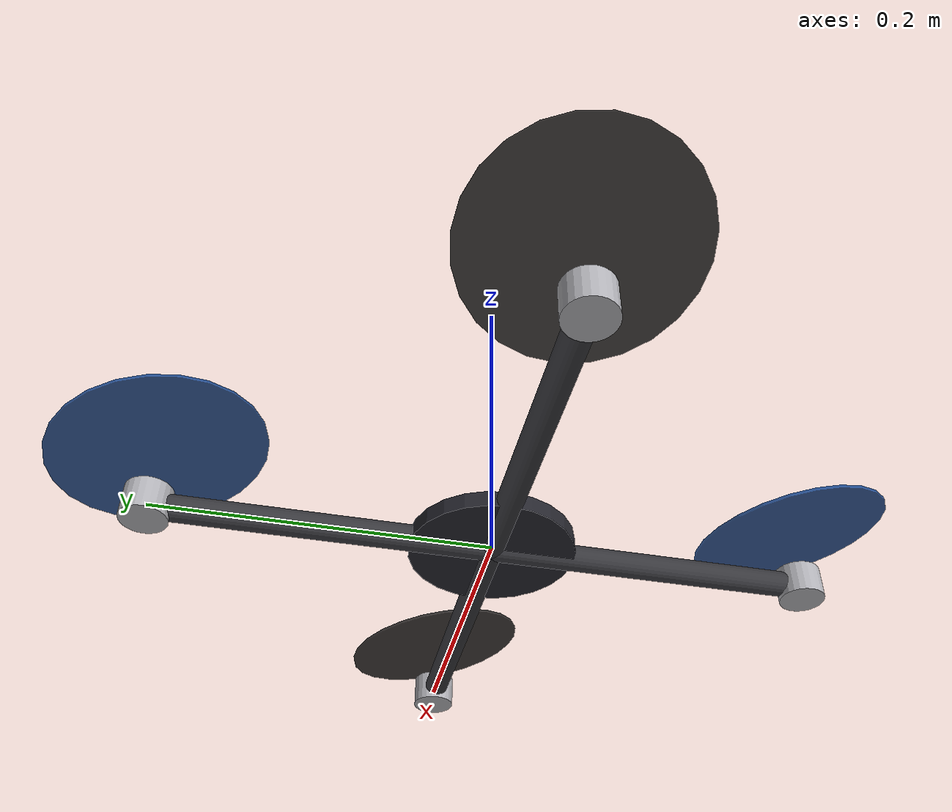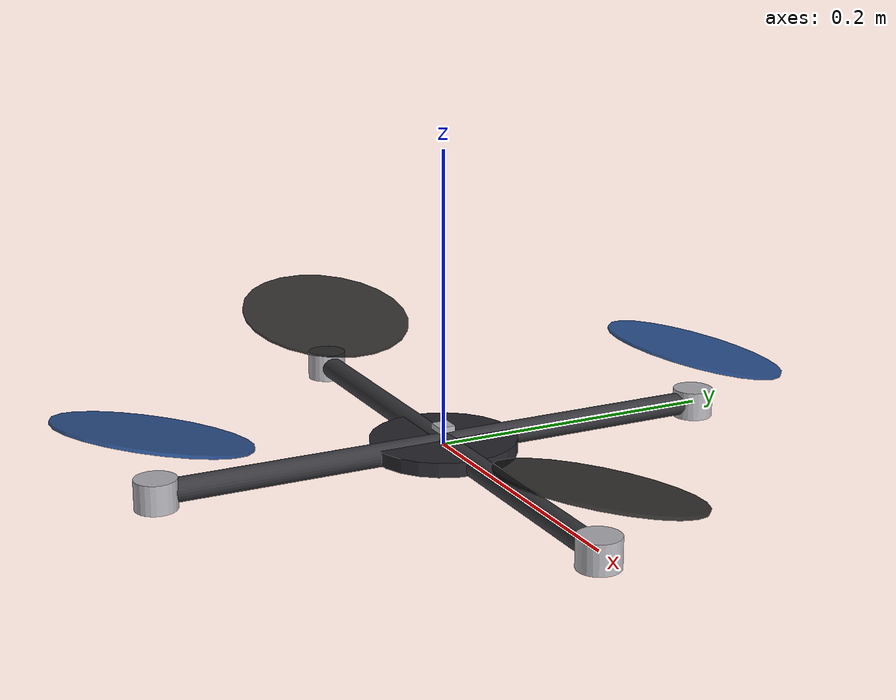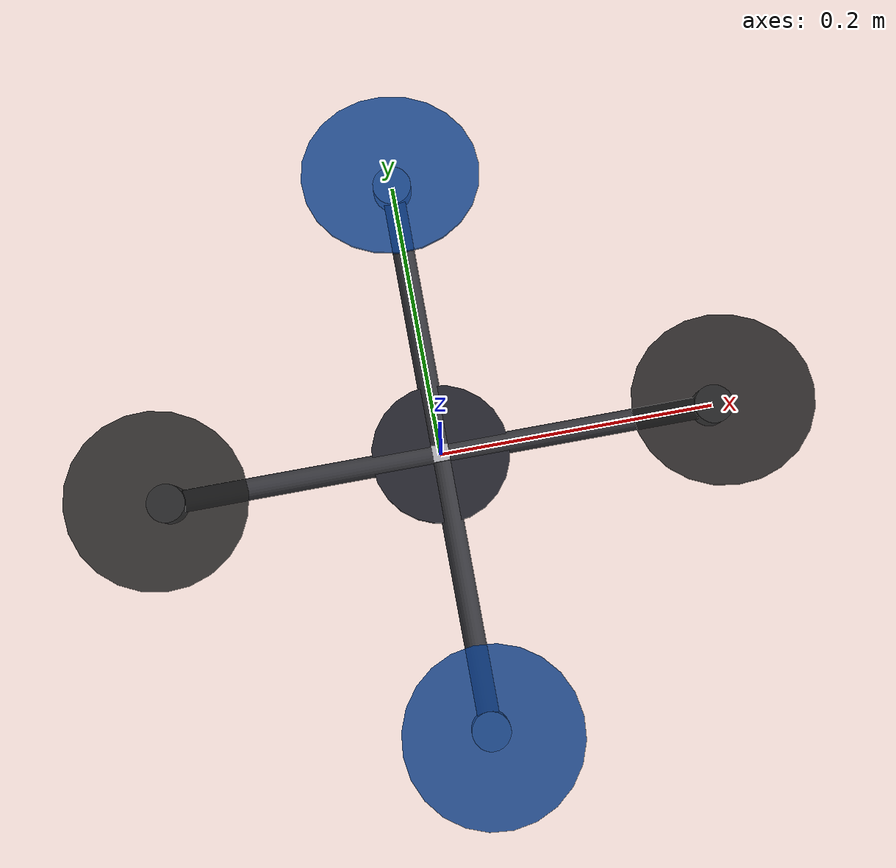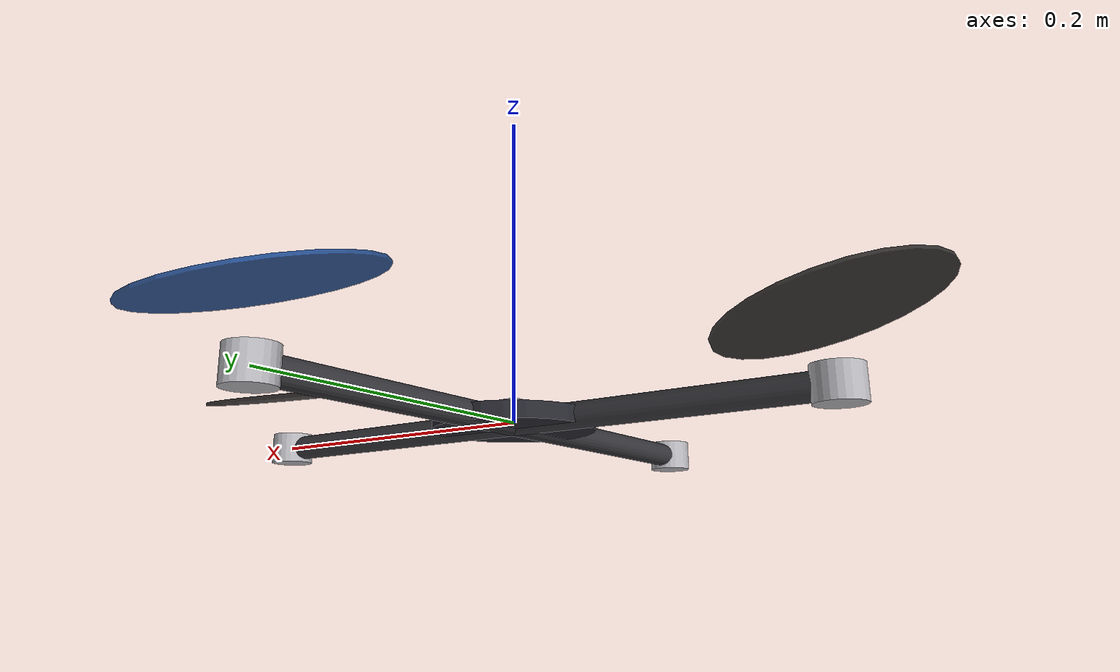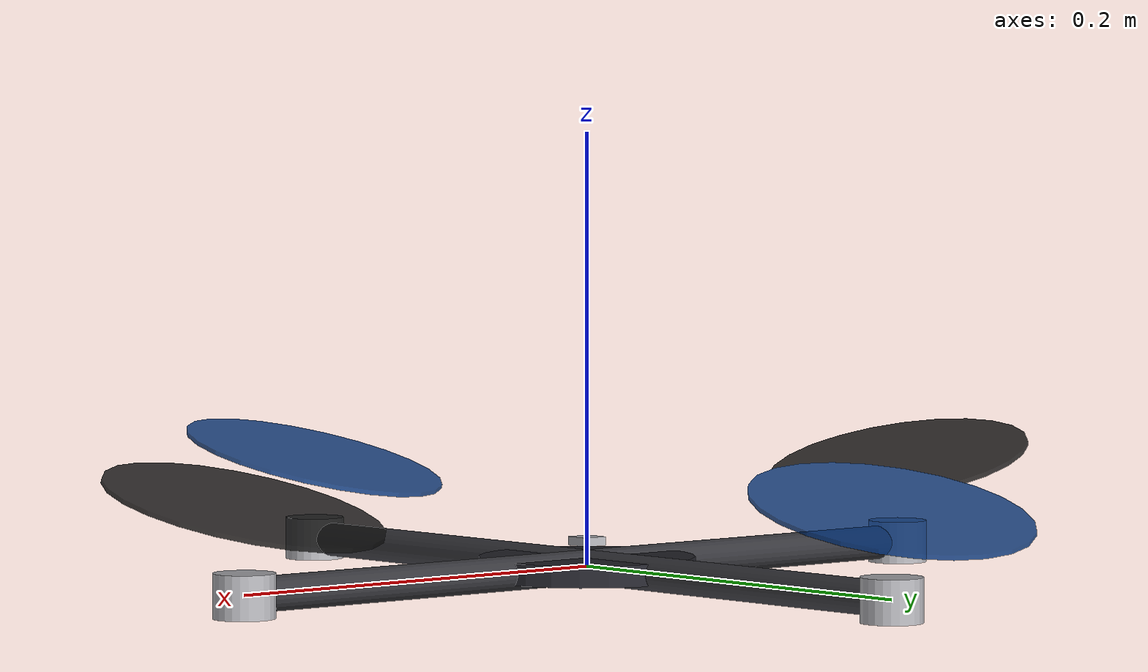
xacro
<?xml version="1.0"?>
<robot name="novel_random_tilt_octo_clearance" xmlns:xacro="http://www.ros.org/wiki/xacro">

  <material name="mat_core"><color rgba="0.15 0.15 0.18 1.0"/></material>
  <material name="mat_arm"><color rgba="0.22 0.22 0.24 1.0"/></material>
  <material name="mat_motor"><color rgba="0.70 0.70 0.72 1.0"/></material>
  <material name="mat_rotor_ccw"><color rgba="0.10 0.10 0.10 0.85"/></material>
  <material name="mat_rotor_cw"><color rgba="0.05 0.25 0.55 0.85"/></material>

  <xacro:macro name="inertial_box" params="mass x y z">
    <inertial><origin xyz="0 0 0" rpy="0 0 0"/><mass value="${mass}"/><inertia ixx="${mass*(y*y + z*z)/12.0}" ixy="0.0" ixz="0.0" iyy="${mass*(x*x + z*z)/12.0}" iyz="0.0" izz="${mass*(x*x + y*y)/12.0}"/></inertial>
  </xacro:macro>
  <xacro:macro name="inertial_cylinder_z" params="mass radius length">
    <inertial><origin xyz="0 0 0" rpy="0 0 0"/><mass value="${mass}"/><inertia ixx="${mass*(3*radius*radius + length*length)/12.0}" ixy="0.0" ixz="0.0" iyy="${mass*(3*radius*radius + length*length)/12.0}" iyz="0.0" izz="${0.5*mass*radius*radius}"/></inertial>
  </xacro:macro>

  <link name="base_link">
    <visual><geometry><cylinder radius="0.050000" length="0.010000"/></geometry><material name="mat_core"/></visual>
    <collision><geometry><cylinder radius="0.050000" length="0.010000"/></geometry></collision>
    <xacro:inertial_cylinder_z mass="0.400000" radius="0.050000" length="0.010000"/>
  </link>

  <link name="imu_link">
    <visual><origin xyz="0 0 0.012" rpy="0 0 0"/><geometry><box size="0.012 0.012 0.004"/></geometry><material name="mat_motor"/></visual>
    <collision><origin xyz="0 0 0.012" rpy="0 0 0"/><geometry><box size="0.012 0.012 0.004"/></geometry></collision>
    <xacro:inertial_box mass="0.005" x="0.012" y="0.012" z="0.004"/>
  </link>
  <joint name="imu_joint" type="fixed"><parent link="base_link"/><child link="imu_link"/><origin xyz="0 0 0" rpy="0 0 0"/></joint>

  <!-- arm_1: spin=ccw, propsize=2.0, pitch=0.045, blades=2, rotor_xyz=(0.0, 0.0, 0.038997105988863544), rotor_rpy=(-0.16004871936304882, -0.19205313699663445, -0.5699870937327997) -->
  <link name="arm_1_arm_link">
    <visual><origin xyz="0.100000 0 0" rpy="0 1.57079632679 0"/><geometry><cylinder radius="0.008000" length="0.200000"/></geometry><material name="mat_arm"/></visual>
    <collision><origin xyz="0.100000 0 0" rpy="0 1.57079632679 0"/><geometry><cylinder radius="0.008000" length="0.200000"/></geometry></collision>
    <xacro:inertial_cylinder_z mass="0.036000" radius="0.008000" length="0.200000"/>
  </link>
  <joint name="base_to_arm_1_arm_joint" type="fixed"><parent link="base_link"/><child link="arm_1_arm_link"/><origin xyz="0.000000 0.000000 0.000000" rpy="0.000000 0.000000 0.000000"/></joint>

  <link name="arm_1_motor_link">
    <visual><geometry><cylinder radius="0.014000" length="0.020000"/></geometry><material name="mat_motor"/></visual>
    <collision><geometry><cylinder radius="0.014000" length="0.020000"/></geometry></collision>
    <xacro:inertial_cylinder_z mass="0.060000" radius="0.014000" length="0.020000"/>
  </link>
  <joint name="arm_1_arm_to_motor_joint" type="fixed"><parent link="arm_1_arm_link"/><child link="arm_1_motor_link"/><origin xyz="0.200000 0.000000 0.000000" rpy="0.000000 0.000000 0.000000"/></joint>

  <link name="arm_1_rotor_link">
    <visual><origin xyz="0 0 0" rpy="0.000000 0.000000 0.000000"/><geometry><cylinder radius="0.063500" length="0.002000"/></geometry><material name="mat_rotor_ccw"/></visual>
    <collision><origin xyz="0 0 0" rpy="0.000000 0.000000 0.000000"/><geometry><cylinder radius="0.063500" length="0.002000"/></geometry></collision>
    <xacro:inertial_cylinder_z mass="0.010000" radius="0.010000" length="0.006000"/>
  </link>
  <joint name="arm_1_motor_to_rotor_joint" type="fixed"><parent link="arm_1_motor_link"/><child link="arm_1_rotor_link"/><origin xyz="0.000000 0.000000 0.038997" rpy="-0.160049 -0.192053 -0.569987"/></joint>

  <!-- arm_2: spin=cw, propsize=2.0, pitch=0.045, blades=2, rotor_xyz=(0.0, 0.0, 0.038997105988863544), rotor_rpy=(-0.03915410179161116, 0.24691487665366005, -0.3321471142214127) -->
  <link name="arm_2_arm_link">
    <visual><origin xyz="0.100000 0 0" rpy="0 1.57079632679 0"/><geometry><cylinder radius="0.008000" length="0.200000"/></geometry><material name="mat_arm"/></visual>
    <collision><origin xyz="0.100000 0 0" rpy="0 1.57079632679 0"/><geometry><cylinder radius="0.008000" length="0.200000"/></geometry></collision>
    <xacro:inertial_cylinder_z mass="0.036000" radius="0.008000" length="0.200000"/>
  </link>
  <joint name="base_to_arm_2_arm_joint" type="fixed"><parent link="base_link"/><child link="arm_2_arm_link"/><origin xyz="0.000000 0.000000 0.000000" rpy="0.000000 0.000000 1.570796"/></joint>

  <link name="arm_2_motor_link">
    <visual><geometry><cylinder radius="0.014000" length="0.020000"/></geometry><material name="mat_motor"/></visual>
    <collision><geometry><cylinder radius="0.014000" length="0.020000"/></geometry></collision>
    <xacro:inertial_cylinder_z mass="0.060000" radius="0.014000" length="0.020000"/>
  </link>
  <joint name="arm_2_arm_to_motor_joint" type="fixed"><parent link="arm_2_arm_link"/><child link="arm_2_motor_link"/><origin xyz="0.200000 0.000000 0.000000" rpy="0.000000 0.000000 0.000000"/></joint>

  <link name="arm_2_rotor_link">
    <visual><origin xyz="0 0 0" rpy="0.000000 0.000000 0.000000"/><geometry><cylinder radius="0.063500" length="0.002000"/></geometry><material name="mat_rotor_cw"/></visual>
    <collision><origin xyz="0 0 0" rpy="0.000000 0.000000 0.000000"/><geometry><cylinder radius="0.063500" length="0.002000"/></geometry></collision>
    <xacro:inertial_cylinder_z mass="0.010000" radius="0.010000" length="0.006000"/>
  </link>
  <joint name="arm_2_motor_to_rotor_joint" type="fixed"><parent link="arm_2_motor_link"/><child link="arm_2_rotor_link"/><origin xyz="0.000000 0.000000 0.038997" rpy="-0.039154 0.246915 -0.332147"/></joint>

  <!-- arm_3: spin=ccw, propsize=2.0, pitch=0.045, blades=2, rotor_xyz=(0.0, 0.0, 0.038997105988863544), rotor_rpy=(-0.021225384306073812, -0.24909733651940053, 0.21203938490749352) -->
  <link name="arm_3_arm_link">
    <visual><origin xyz="0.100000 0 0" rpy="0 1.57079632679 0"/><geometry><cylinder radius="0.008000" length="0.200000"/></geometry><material name="mat_arm"/></visual>
    <collision><origin xyz="0.100000 0 0" rpy="0 1.57079632679 0"/><geometry><cylinder radius="0.008000" length="0.200000"/></geometry></collision>
    <xacro:inertial_cylinder_z mass="0.036000" radius="0.008000" length="0.200000"/>
  </link>
  <joint name="base_to_arm_3_arm_joint" type="fixed"><parent link="base_link"/><child link="arm_3_arm_link"/><origin xyz="0.000000 0.000000 0.000000" rpy="0.000000 0.000000 3.141593"/></joint>

  <link name="arm_3_motor_link">
    <visual><geometry><cylinder radius="0.014000" length="0.020000"/></geometry><material name="mat_motor"/></visual>
    <collision><geometry><cylinder radius="0.014000" length="0.020000"/></geometry></collision>
    <xacro:inertial_cylinder_z mass="0.060000" radius="0.014000" length="0.020000"/>
  </link>
  <joint name="arm_3_arm_to_motor_joint" type="fixed"><parent link="arm_3_arm_link"/><child link="arm_3_motor_link"/><origin xyz="0.200000 0.000000 0.000000" rpy="0.000000 0.000000 0.000000"/></joint>

  <link name="arm_3_rotor_link">
    <visual><origin xyz="0 0 0" rpy="0.000000 0.000000 0.000000"/><geometry><cylinder radius="0.063500" length="0.002000"/></geometry><material name="mat_rotor_ccw"/></visual>
    <collision><origin xyz="0 0 0" rpy="0.000000 0.000000 0.000000"/><geometry><cylinder radius="0.063500" length="0.002000"/></geometry></collision>
    <xacro:inertial_cylinder_z mass="0.010000" radius="0.010000" length="0.006000"/>
  </link>
  <joint name="arm_3_motor_to_rotor_joint" type="fixed"><parent link="arm_3_motor_link"/><child link="arm_3_rotor_link"/><origin xyz="0.000000 0.000000 0.038997" rpy="-0.021225 -0.249097 0.212039"/></joint>

  <!-- arm_4: spin=cw, propsize=2.0, pitch=0.045, blades=2, rotor_xyz=(0.0, 0.0, 0.038997105988863544), rotor_rpy=(0.19479250080377666, -0.15670316407338641, -0.4956734008447006) -->
  <link name="arm_4_arm_link">
    <visual><origin xyz="0.100000 0 0" rpy="0 1.57079632679 0"/><geometry><cylinder radius="0.008000" length="0.200000"/></geometry><material name="mat_arm"/></visual>
    <collision><origin xyz="0.100000 0 0" rpy="0 1.57079632679 0"/><geometry><cylinder radius="0.008000" length="0.200000"/></geometry></collision>
    <xacro:inertial_cylinder_z mass="0.036000" radius="0.008000" length="0.200000"/>
  </link>
  <joint name="base_to_arm_4_arm_joint" type="fixed"><parent link="base_link"/><child link="arm_4_arm_link"/><origin xyz="0.000000 0.000000 0.000000" rpy="0.000000 0.000000 4.712389"/></joint>

  <link name="arm_4_motor_link">
    <visual><geometry><cylinder radius="0.014000" length="0.020000"/></geometry><material name="mat_motor"/></visual>
    <collision><geometry><cylinder radius="0.014000" length="0.020000"/></geometry></collision>
    <xacro:inertial_cylinder_z mass="0.060000" radius="0.014000" length="0.020000"/>
  </link>
  <joint name="arm_4_arm_to_motor_joint" type="fixed"><parent link="arm_4_arm_link"/><child link="arm_4_motor_link"/><origin xyz="0.200000 0.000000 0.000000" rpy="0.000000 0.000000 0.000000"/></joint>

  <link name="arm_4_rotor_link">
    <visual><origin xyz="0 0 0" rpy="0.000000 0.000000 0.000000"/><geometry><cylinder radius="0.063500" length="0.002000"/></geometry><material name="mat_rotor_cw"/></visual>
    <collision><origin xyz="0 0 0" rpy="0.000000 0.000000 0.000000"/><geometry><cylinder radius="0.063500" length="0.002000"/></geometry></collision>
    <xacro:inertial_cylinder_z mass="0.010000" radius="0.010000" length="0.006000"/>
  </link>
  <joint name="arm_4_motor_to_rotor_joint" type="fixed"><parent link="arm_4_motor_link"/><child link="arm_4_rotor_link"/><origin xyz="0.000000 0.000000 0.038997" rpy="0.194793 -0.156703 -0.495673"/></joint>

</robot>
